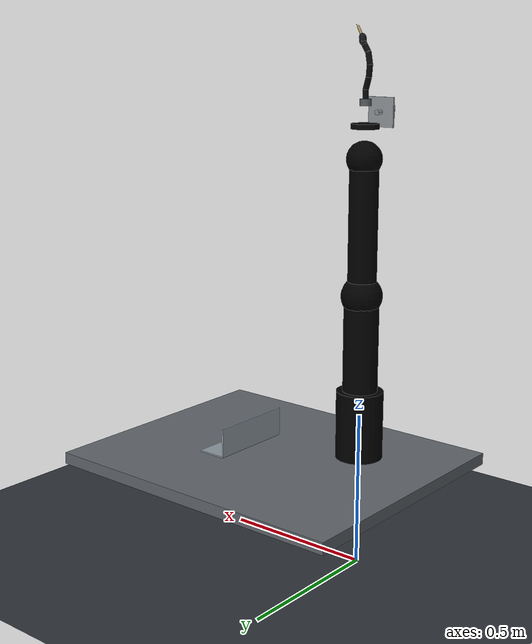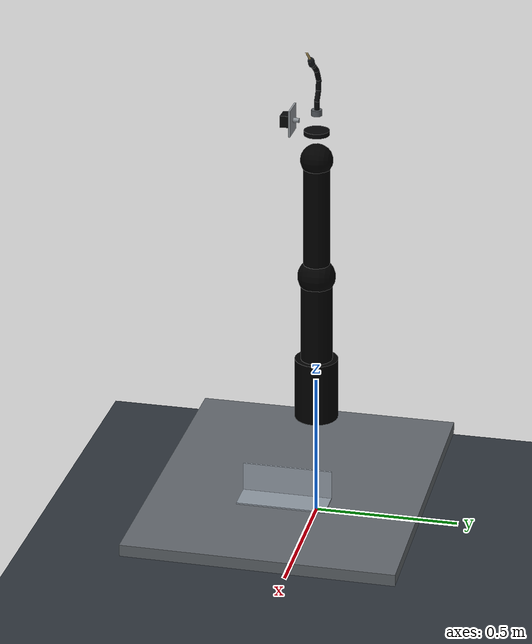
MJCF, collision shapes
<mujoco model="elfin5_welding">
  <compiler angle="radian"/>
  <option timestep="0.002" gravity="0 0 -9.81" integrator="implicitfast"/>
  <visual>
    <global offwidth="640" offheight="480"/>
    <headlight ambient="0.30 0.30 0.30" diffuse="0.60 0.60 0.60" specular="0.1 0.1 0.1"/>
  </visual>

  <default>
    <joint damping="5" frictionloss="1" armature="0.15"/>
    <position kv="60"/>
    <default class="visual">
      <geom type="mesh" contype="0" conaffinity="0" group="2" rgba="0.752941 0.752941 0.752941 1"/>
    </default>
    <default class="robot_collision">
      <geom contype="1" conaffinity="2" group="3" rgba="0 0 0 0"/>
    </default>
    <default class="environment_collision">
      <geom contype="2" conaffinity="1" friction="0.6 0.1 0.1"/>
    </default>
  </default>

  <asset>
    <mesh name="elfin_base" file="meshes/visual/elfin_base.STL"/>
    <mesh name="elfin_link1" file="meshes/visual/elfin_link1.STL"/>
    <mesh name="elfin_link2" file="meshes/visual/elfin_link2.STL"/>
    <mesh name="elfin_link3" file="meshes/visual/elfin_link3.STL"/>
    <mesh name="elfin_link4" file="meshes/visual/elfin_link4.STL"/>
    <mesh name="elfin_link5" file="meshes/visual/elfin_link5.STL"/>
    <mesh name="elfin_link6" file="meshes/visual/elfin_link6.STL"/>
  </asset>

  <worldbody>
    <light pos="0.5 -0.4 1.8" dir="0.1 0.1 -1" diffuse="0.8 0.8 0.8"/>
    <light pos="-0.3 0.5 1.2" dir="0.2 -0.1 -1" diffuse="0.4 0.4 0.4"/>
    <geom name="floor" class="environment_collision" type="plane" size="2 2 0.1" rgba="0.18 0.2 0.23 1"/>
    <body name="table_frame" pos="0.35 0 0.27">
      <geom name="table" class="environment_collision" type="box" size="0.55 0.45 0.02" rgba="0.38 0.40 0.42 1"/>
      <camera name="global" pos="0.90 0 0.78" quat="0.649530 0.279484 0.279484 0.649530" fovy="55"/>
    </body>

    <body name="robot_mount" pos="0 0 0.29">
      <inertial pos="-0.000763828 0.000005785 0.030441660" mass="0.970240" diaginertia="0.001577 0.001446 0.002366"/>
      <geom name="elfin_base_visual" class="visual" mesh="elfin_base"/>
      <body name="elfin_link1" pos="0 0 0.22" gravcomp="1">
      <inertial pos="2.74291e-06 -0.00431107 -0.0357493" quat="0.695517 0.13026 -0.130108 0.694522" mass="3.25128" diaginertia="0.0133203 0.0131139 0.00618857"/>
      <joint name="elfin_joint1" axis="0 0 1" range="-3.14 3.14" actuatorfrcrange="-420 420"/>
      <geom name="elfin_link1_visual" class="visual" mesh="elfin_link1"/>
      <geom name="elfin_link1_collision" class="robot_collision" type="cylinder" pos="0 0 -0.035" size="0.075 0.11"/>
      <body name="elfin_link2" quat="0.707105 0.707108 0 0" gravcomp="1">
        <inertial pos="-4.61142e-06 0.159174 0.127676" quat="0.508546 0.491422 -0.491352 0.508388" mass="2.80251" diaginertia="0.0479284 0.0472004 0.00274175"/>
        <joint name="elfin_joint2" axis="0 0 1" range="-2.35 2.35" actuatorfrcrange="-420 420"/>
        <geom name="elfin_link2_visual" class="visual" mesh="elfin_link2"/>
        <geom name="elfin_link2_collision" class="robot_collision" type="capsule" fromto="0 0 0 0 0.38 0" size="0.055"/>
        <body name="elfin_link3" pos="0 0.38 0" quat="-0.0000026 0.707105 0.707108 -0.0000026" gravcomp="1">
          <inertial pos="0.0290083 8.22345e-06 -0.00396673" quat="0.592349 0.384845 0.382924 0.595303" mass="1.98577" diaginertia="0.00594605 0.00579558 0.00273667"/>
          <joint name="elfin_joint3" axis="0 0 1" range="-2.61 2.61" actuatorfrcrange="-200 200"/>
          <geom name="elfin_link3_visual" class="visual" mesh="elfin_link3"/>
          <geom name="elfin_link3_collision" class="robot_collision" type="sphere" size="0.065"/>
          <body name="elfin_link4" quat="0.499998 0.5 0.500002 0.5" gravcomp="1">
            <inertial pos="-3.37325e-05 -0.0592466 0.248712" quat="0.985985 0.166831 -0.000327712 0.000424663" mass="1.39666" diaginertia="0.0146418 0.0141823 0.00177033"/>
            <joint name="elfin_joint4" axis="0 0 1" range="-3.14 3.14" actuatorfrcrange="-200 200"/>
            <geom name="elfin_link4_visual" class="visual" mesh="elfin_link4"/>
            <geom name="elfin_link4_collision" class="robot_collision" type="capsule" fromto="0 0 0 0 0 0.42" size="0.045"/>
            <body name="elfin_link5" pos="0 0 0.42" quat="0.707105 -0.707108 0 0" gravcomp="1">
              <inertial pos="-1.05028e-06 -0.0219936 -0.0031394" quat="0.855822 0.51727 -0.000637775 0.00103867" mass="1.18718" diaginertia="0.00223608 0.0021534 0.00113057"/>
              <joint name="elfin_joint5" axis="0 0 1" range="-2.56 2.56" actuatorfrcrange="-69 69"/>
              <geom name="elfin_link5_visual" class="visual" mesh="elfin_link5"/>
              <!-- The source meshes omit the visible joint6 cover between link5 and link6. -->
              <geom name="elfin_joint6_ring" type="cylinder" pos="0 -0.097 0" quat="0.707107 0.707107 0 0" size="0.043 0.008" contype="0" conaffinity="0" group="2" rgba="0.02 0.02 0.025 1"/>
              <geom name="elfin_link5_collision" class="robot_collision" type="sphere" size="0.055"/>
              <body name="elfin_link6" quat="0.707105 0.707108 0 0" gravcomp="1">
                <inertial pos="-1.59842e-05 -0.000344918 0.128922" mass="0.281755" diaginertia="0.000141507 0.000144516 0.000252051"/>
                <joint name="elfin_joint6" axis="0 0 1" range="-3.14 3.14" actuatorfrcrange="-69 69"/>
                <geom name="elfin_link6_visual" class="visual" mesh="elfin_link6"/>
                <!-- The 20 mm adapter and first tube segment share link6's flange axis. -->
                <geom name="torch_flange" type="cylinder" pos="0 0 0.1665" size="0.018 0.010" contype="1" conaffinity="2" rgba="0.35 0.37 0.39 1"/>
                <geom name="torch_tube_1" type="capsule" fromto="0 0 0.1765 0 0 0.205" size="0.009" contype="1" conaffinity="2" rgba="0.035 0.040 0.045 1"/>
                <geom name="torch_tube_2" type="capsule" fromto="0 0 0.205 -0.012 0.003 0.240" size="0.009" contype="1" conaffinity="2" rgba="0.035 0.040 0.045 1"/>
                <geom name="torch_tube_3" type="capsule" fromto="-0.012 0.003 0.240 -0.015 0.003 0.275" size="0.009" contype="1" conaffinity="2" rgba="0.035 0.040 0.045 1"/>
                <geom name="torch_tube_4" type="capsule" fromto="-0.015 0.003 0.275 -0.005 -0.002 0.310" size="0.009" contype="1" conaffinity="2" rgba="0.035 0.040 0.045 1"/>
                <geom name="torch_tube_5" type="capsule" fromto="-0.005 -0.002 0.310 0.012 -0.008 0.330" size="0.009" contype="1" conaffinity="2" rgba="0.035 0.040 0.045 1"/>
                <geom name="torch_tube_6" type="capsule" fromto="0.012 -0.008 0.330 0.022 -0.012 0.340" size="0.009" contype="1" conaffinity="2" rgba="0.035 0.040 0.045 1"/>
                <geom name="torch_collar" type="capsule" fromto="0.022 -0.012 0.340 0.025 -0.014 0.353" size="0.011" contype="1" conaffinity="2" rgba="0.08 0.09 0.10 1"/>
                <geom name="torch_nozzle" type="capsule" fromto="0.025 -0.014 0.353 0.047 -0.022 0.383" size="0.004" contype="1" conaffinity="2" rgba="0.64 0.55 0.34 1"/>
                <geom name="torch_tip" type="capsule" fromto="0.047 -0.022 0.383 0.057557 -0.025778 0.389520" size="0.00025" contype="1" conaffinity="2" rgba="0.42 0.31 0.18 1"/>
                <site name="tcp" pos="0.057557 -0.025778 0.389520" quat="-0.387292070 0.078064102 0.914695023 0.085110886" size="0.008" group="5" rgba="0 0 0 0"/>
                <!-- Camera mount is centered on the protruding screw at local -Y. -->
                <geom name="wrist_camera_standoff" type="cylinder" pos="0 -0.069 0.134" quat="0.707107 0.707107 0 0" size="0.008 0.010" contype="1" conaffinity="2" rgba="0.55 0.57 0.59 1"/>
                <geom name="wrist_camera_bracket" type="box" pos="0 -0.083 0.134" size="0.045 0.003 0.045" contype="1" conaffinity="2" rgba="0.58 0.60 0.62 1"/>
                <geom name="wrist_camera_body" type="box" pos="0 -0.104 0.134" size="0.025 0.015 0.020" contype="1" conaffinity="2" rgba="0.025 0.028 0.032 1"/>
                <camera name="wrist" pos="0.008607 -0.071891 0.172212" quat="0.059263 -0.391964 -0.907753 0.137249" fovy="85"/>
                <body name="tool_payload" pos="0.086831 -0.072975 0.442456" gravcomp="1">
                  <inertial pos="0 0 0" mass="0.216" diaginertia="0.0001 0.0001 0.0001"/>
                </body>
              </body>
            </body>
          </body>
        </body>
      </body>
      </body>
    </body>

    <body name="workpiece" pos="0.45 0 0.2925">
      <geom name="plate_horizontal" class="environment_collision" type="box" pos="0.05 0 0" size="0.05 0.15 0.0025" rgba="0.55 0.59 0.63 1"/>
      <geom name="plate_vertical" class="environment_collision" type="box" pos="0 0 0.05" size="0.0025 0.15 0.05" rgba="0.60 0.64 0.68 1"/>
      <!-- The fillet seam is outside both 5 mm plates, not inside the vertical plate. -->
      <site name="seam_start" pos="0.004 -0.1 0.004" size="0.005" group="5" rgba="0 0 0 0"/>
      <site name="seam_end" pos="0.004 0.1 0.004" size="0.005" group="5" rgba="0 0 0 0"/>
    </body>
  </worldbody>

  <actuator>
    <position name="motor1" joint="elfin_joint1" kp="3000" kv="120" ctrlrange="-3.14 3.14"/>
    <position name="motor2" joint="elfin_joint2" kp="3000" kv="120" ctrlrange="-2.35 2.35"/>
    <position name="motor3" joint="elfin_joint3" kp="2000" kv="80" ctrlrange="-2.61 2.61"/>
    <position name="motor4" joint="elfin_joint4" kp="2000" kv="80" ctrlrange="-3.14 3.14"/>
    <position name="motor5" joint="elfin_joint5" kp="800" kv="40" ctrlrange="-2.56 2.56"/>
    <position name="motor6" joint="elfin_joint6" kp="800" kv="40" ctrlrange="-3.14 3.14"/>
  </actuator>
</mujoco>
